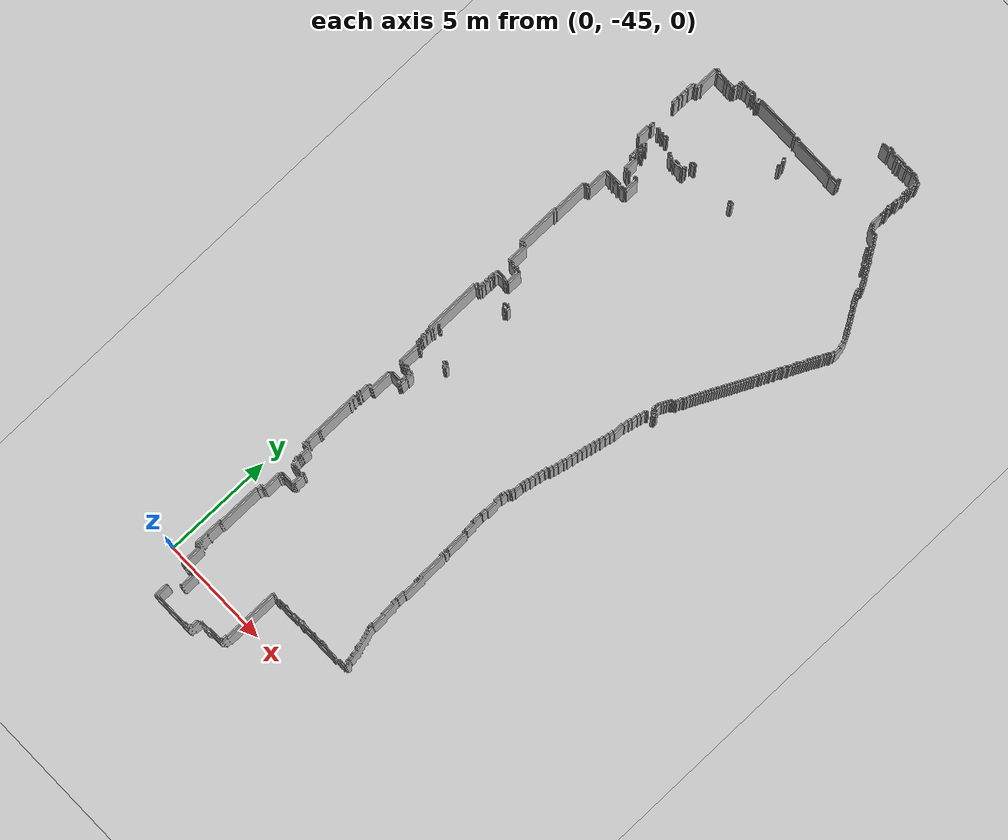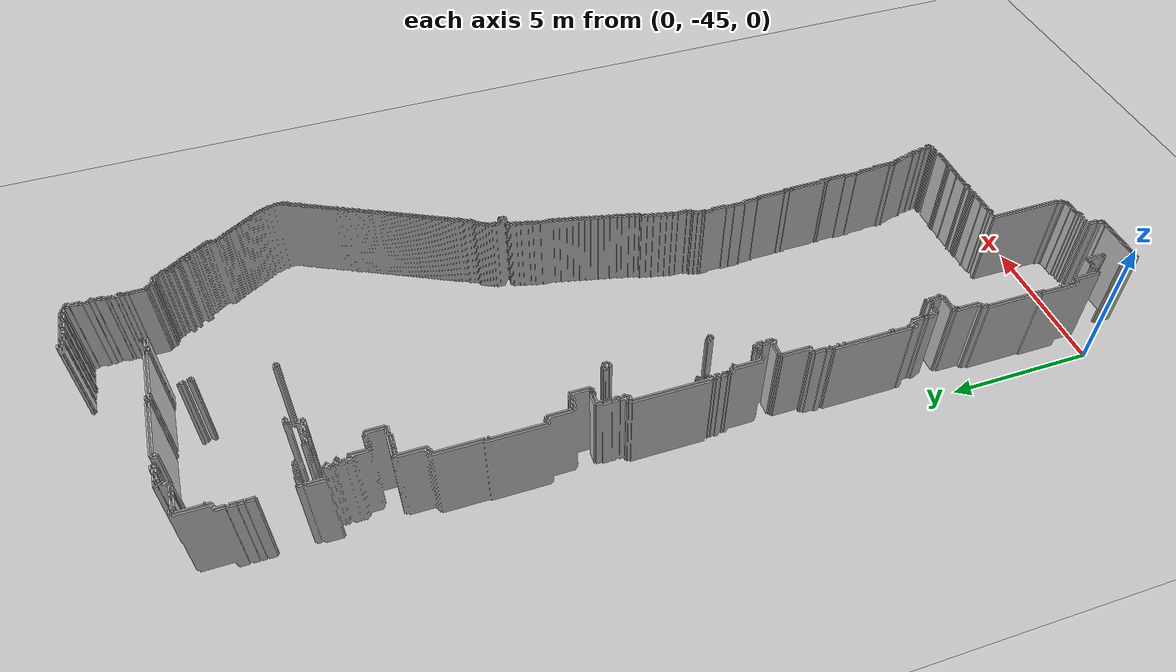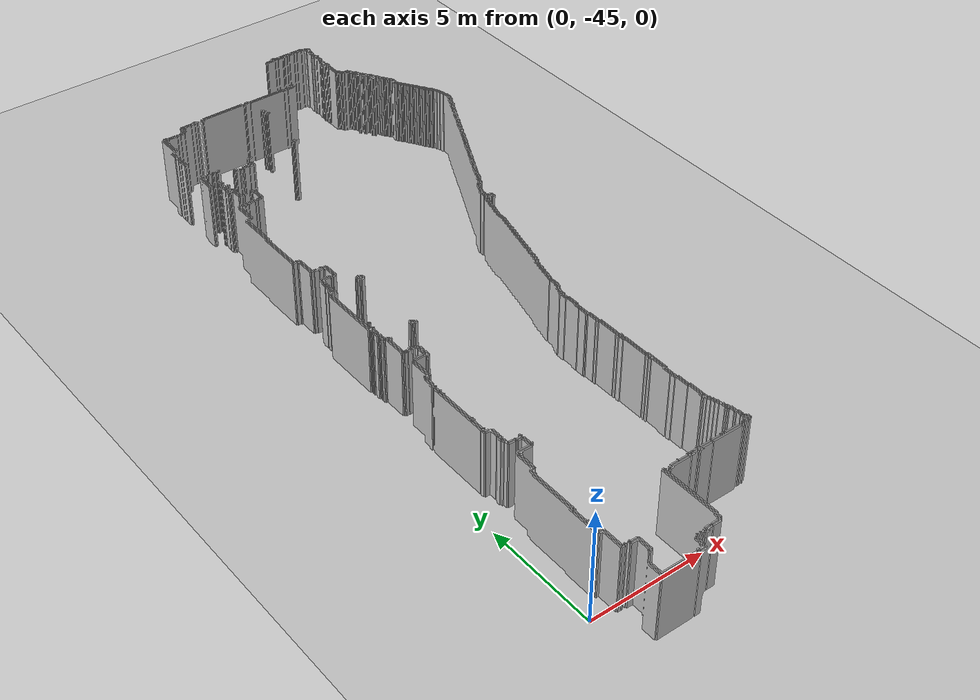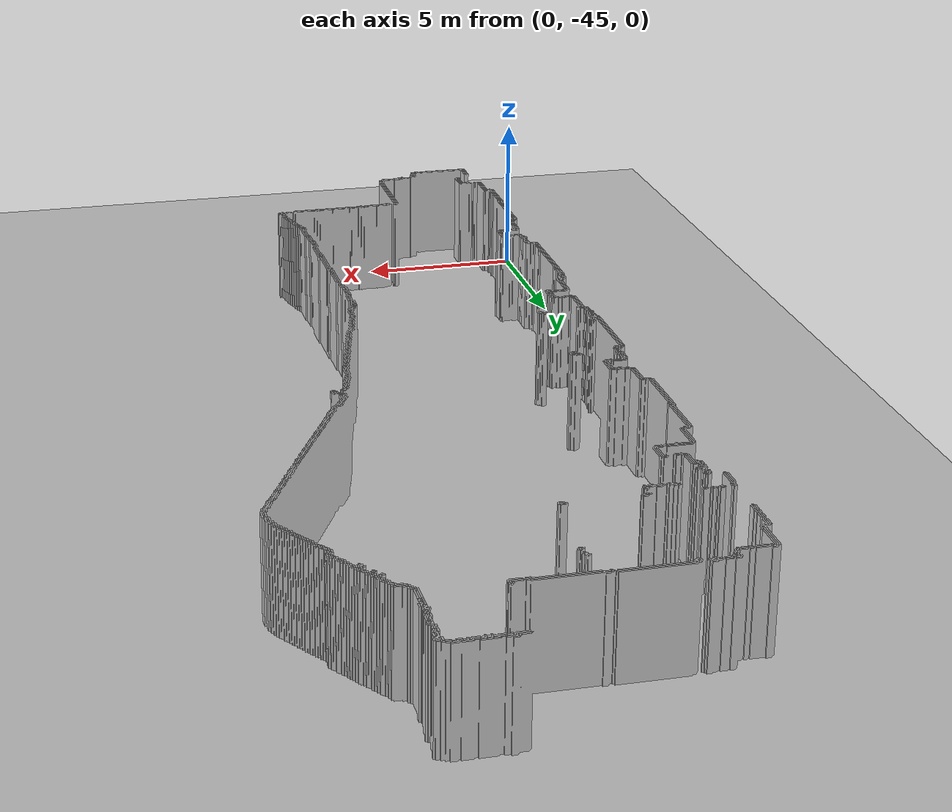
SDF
<?xml version="1.0" ?>
<sdf version="1.6">
  <world name="lab_new">

    <!-- Gazebo Harmonic sistem plugin'leri: Sensors olmadan hiçbir sensör veri üretmez -->
    <plugin filename="gz-sim-physics-system" name="gz::sim::systems::Physics"/>
    <plugin filename="gz-sim-user-commands-system" name="gz::sim::systems::UserCommands"/>
    <plugin filename="gz-sim-scene-broadcaster-system" name="gz::sim::systems::SceneBroadcaster"/>
    <plugin filename="gz-sim-sensors-system" name="gz::sim::systems::Sensors"/>
    <plugin filename="gz-sim-imu-system" name="gz::sim::systems::Imu"/>

    <light name="sun" type="directional">
      <cast_shadows>true</cast_shadows>
      <pose>0 0 10 0 0 0</pose>
      <diffuse>0.8 0.8 0.8 1</diffuse>
      <specular>0.2 0.2 0.2 1</specular>
      <direction>-0.5 0.1 -0.9</direction>
    </light>

    <model name="ground_plane">
      <static>true</static>
      <link name="link">
        <collision name="collision">
          <geometry>
            <plane>
              <normal>0 0 1</normal>
              <size>500 500</size>
            </plane>
          </geometry>
        </collision>
        <visual name="visual">
          <geometry>
            <plane>
              <normal>0 0 1</normal>
              <size>500 500</size>
            </plane>
          </geometry>
          <material>
            <ambient>0.8 0.8 0.8 1</ambient>
            <diffuse>0.8 0.8 0.8 1</diffuse>
          </material>
        </visual>
      </link>
    </model>

    <include>
      <uri>model://lab_new</uri>
    </include>

  </world>
</sdf>

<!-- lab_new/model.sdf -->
<sdf version="1.4">
  <model name="lab_new">
    <link name="link">
      <inertial>
        <mass>15</mass>
        <inertia>
          <ixx>0.0</ixx>
          <ixy>0.0</ixy>
          <ixz>0.0</ixz>
          <iyy>0.0</iyy>
          <iyz>0.0</iyz>
          <izz>0.0</izz>
        </inertia>
      </inertial>
      <collision name="collision">
        <pose>0 0 0 0 0 0</pose>
        <geometry>
          <mesh>
            <uri>model://lab_new/meshes/lab_new.stl</uri>
          </mesh>
        </geometry>
      </collision>
      <visual name="visual">
        <pose>0 0 0 0 0 0</pose>
        <geometry>
          <mesh>
            <uri>model://lab_new/meshes/lab_new.stl</uri>
          </mesh>
        </geometry>
      </visual>
    </link>
    <static>1</static>
  </model>
</sdf>
